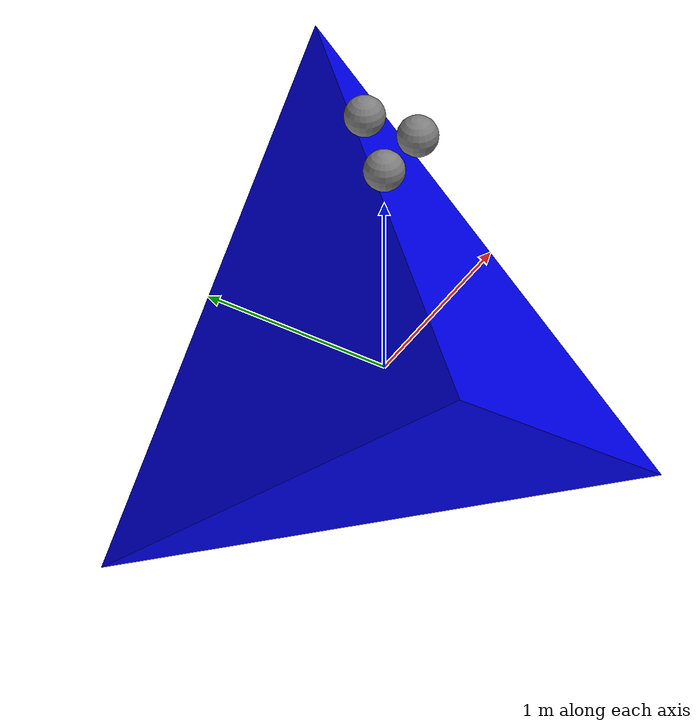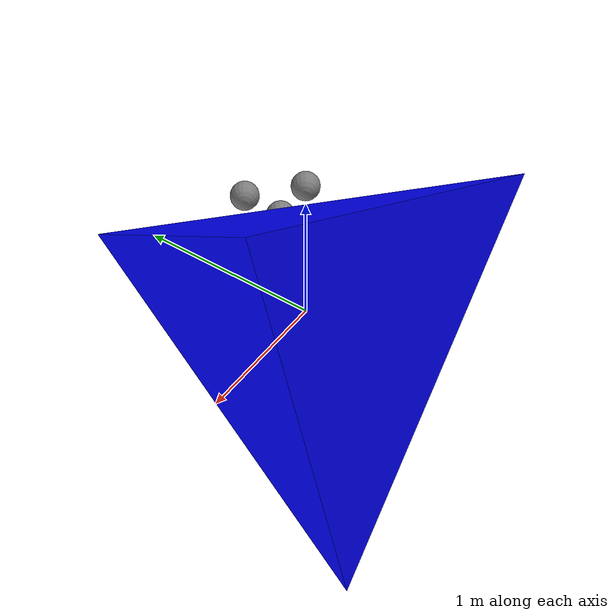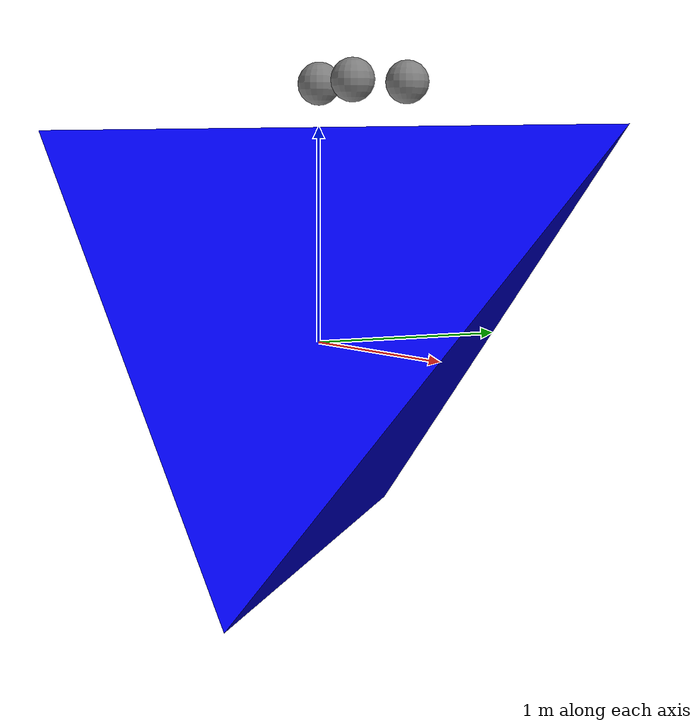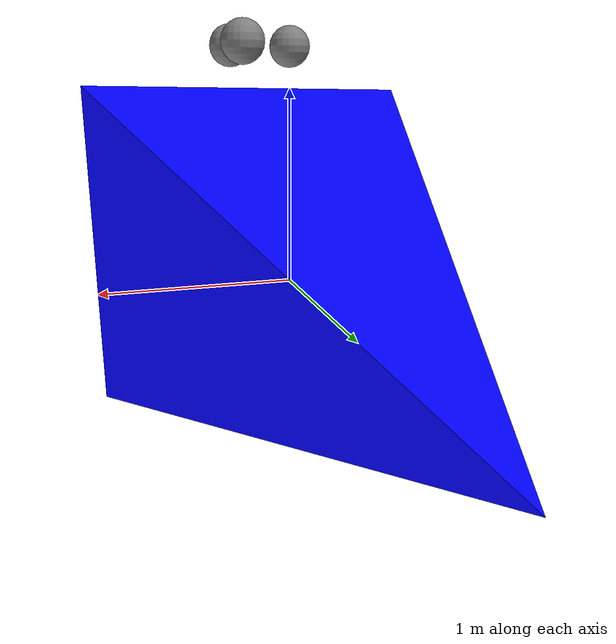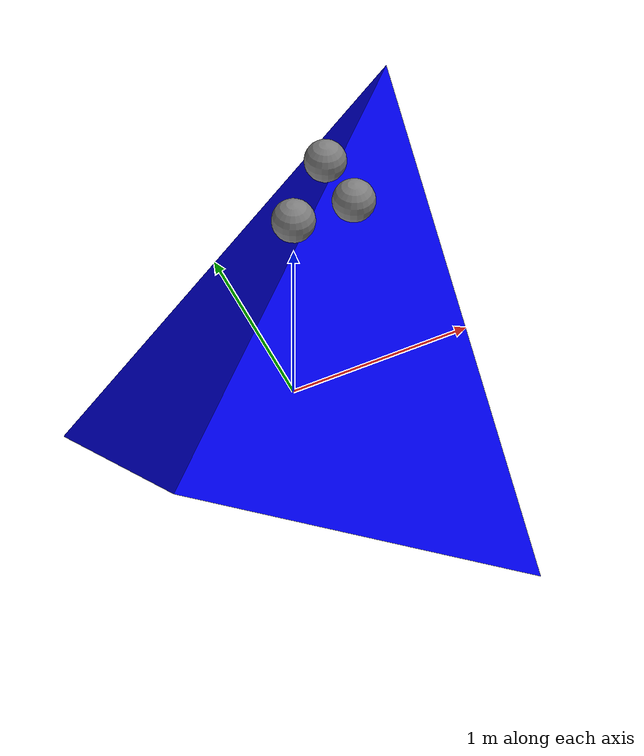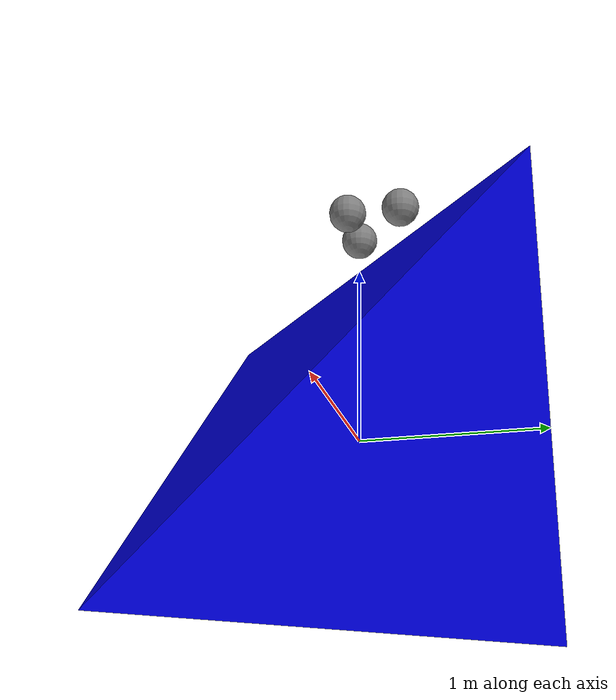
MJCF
<mujoco model="tet_ball">
  <compiler angle="degree"/>
  <option gravity="0 0 -9.8100000000000005"/>
  <default>
    <default class="/">
      <joint damping="0.001"/>
      <geom friction="1 0.0050000000000000001 0.0001" density="500"/>
    </default>
  </default>

  <asset>
    <texture builtin="gradient" height="100" rgb1="1 1 1" rgb2="0 0 0" type="skybox" width="100"/>
    <texture builtin="flat" height="1278" mark="cross" markrgb="1 1 1" name="texgeom" random="0.01" rgb1="0.8 0.6 0.4" rgb2="0.8 0.6 0.4" type="cube" width="127"/>
    <texture builtin="checker" height="100" name="texplane" rgb1="0 0 0" rgb2="0.8 0.8 0.8" type="2d" width="100"/>
    <material name="MatPlane" reflectance="0.5" shininess="1" specular="1" texrepeat="60 60" texture="texplane"/>
    <mesh name="tet" file="tet.obj"/>
  </asset>

  <worldbody>
    <geom name="tet1" contype="1" conaffinity="1" pos="0 0 0" type="mesh" rgba="0 0 1 1" mesh="tet"/>

    <body name="sphere1" pos="0 0 1.2">
      <joint name="root1" class="/" type="free"/>
      <geom name="seg1_geom" class="/" type="sphere" size="0.1"/>
    </body>

    <body name="sphere2" pos="0.3 0 1.2">
      <joint name="root2" class="/" type="free"/>
      <geom name="seg2_geom" class="/" type="sphere" size="0.1"/>
    </body>

    <body name="sphere3" pos="0.3 0.29 1.2">
      <joint name="root3" class="/" type="free"/>
      <geom name="seg3_geom" class="/" type="sphere" size="0.1"/>
    </body>
  </worldbody>
</mujoco>
